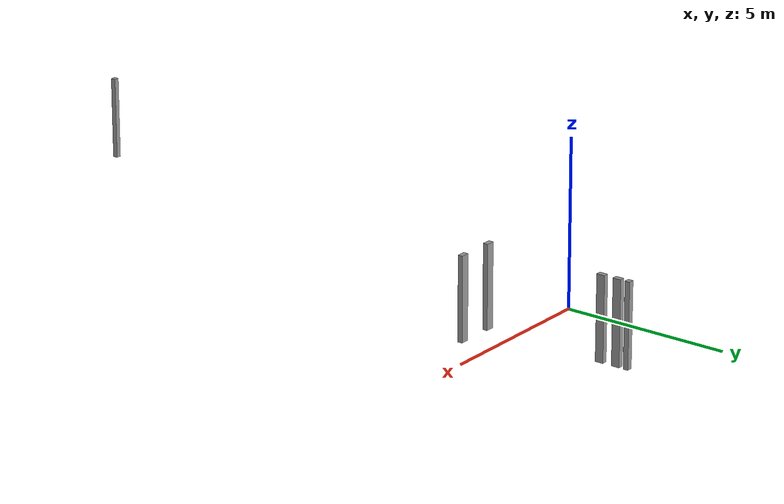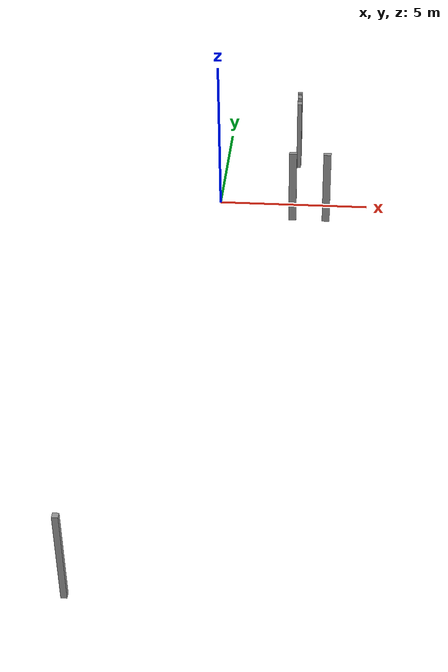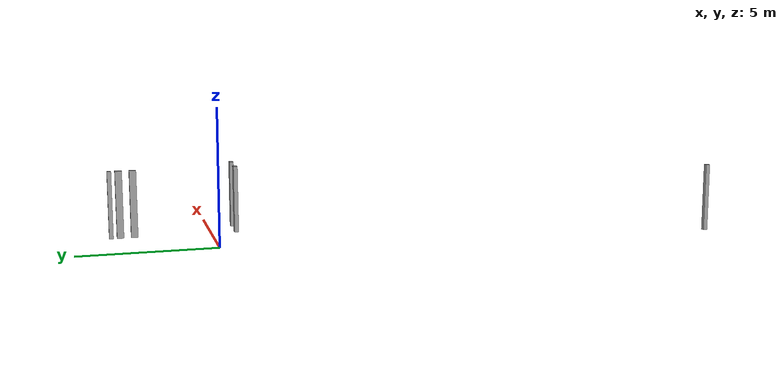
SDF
<?xml version='1.0'?>
<sdf version='1.6'>
  <model name='extra_gaps'>
    <pose frame=''>0.885573 -7.24674 0 0 -0 0</pose>
    <link name='Wall_39'>
      <collision name='Wall_39_Collision'>
        <geometry>
          <box>
            <size>0.15 0.15 2.5</size>
          </box>
        </geometry>
        <pose frame=''>0 0 1.25 0 -0 0</pose>
      </collision>
      <visual name='Wall_39_Visual'>
        <pose frame=''>0 0 1.25 0 -0 0</pose>
        <geometry>
          <box>
            <size>0.15 0.15 2.5</size>
          </box>
        </geometry>
        <material>
          <script>
            <uri>file://media/materials/scripts/gazebo.material</uri>
            <name>Gazebo/Grey</name>
          </script>
          <ambient>1 1 1 1</ambient>
        </material>
        <meta>
          <layer>0</layer>
        </meta>
      </visual>
      <pose frame=''>-2.7906 -10.8978 0 0 -0 0</pose>
    </link>
    <link name='Wall_46'>
      <collision name='Wall_46_Collision'>
        <geometry>
          <box>
            <size>0.16 0.15 2.5</size>
          </box>
        </geometry>
        <pose frame=''>0 0 1.25 0 -0 0</pose>
      </collision>
      <visual name='Wall_46_Visual'>
        <pose frame=''>0 0 1.25 0 -0 0</pose>
        <geometry>
          <box>
            <size>0.16 0.15 2.5</size>
          </box>
        </geometry>
        <material>
          <script>
            <uri>file://media/materials/scripts/gazebo.material</uri>
            <name>Gazebo/Grey</name>
          </script>
          <ambient>1 1 1 1</ambient>
        </material>
        <meta>
          <layer>0</layer>
        </meta>
      </visual>
      <pose frame=''>1.66561 10.8978 0 0 -0 0</pose>
    </link>
    <link name='Wall_48'>
      <collision name='Wall_48_Collision'>
        <geometry>
          <box>
            <size>0.25 0.15 2.5</size>
          </box>
        </geometry>
        <pose frame=''>0 0 1.25 0 -0 0</pose>
      </collision>
      <visual name='Wall_48_Visual'>
        <pose frame=''>0 0 1.25 0 -0 0</pose>
        <geometry>
          <box>
            <size>0.25 0.15 2.5</size>
          </box>
        </geometry>
        <material>
          <script>
            <uri>file://media/materials/scripts/gazebo.material</uri>
            <name>Gazebo/Grey</name>
          </script>
          <ambient>1 1 1 1</ambient>
        </material>
        <meta>
          <layer>0</layer>
        </meta>
      </visual>
      <pose frame=''>1.6706 10.5678 0 0 0 -1.5708</pose>
    </link>
    <link name='Wall_50'>
      <collision name='Wall_50_Collision'>
        <geometry>
          <box>
            <size>0.25 0.15 2.5</size>
          </box>
        </geometry>
        <pose frame=''>0 0 1.25 0 -0 0</pose>
      </collision>
      <visual name='Wall_50_Visual'>
        <pose frame=''>0 0 1.25 0 -0 0</pose>
        <geometry>
          <box>
            <size>0.25 0.15 2.5</size>
          </box>
        </geometry>
        <material>
          <script>
            <uri>file://media/materials/scripts/gazebo.material</uri>
            <name>Gazebo/Grey</name>
          </script>
          <ambient>1 1 1 1</ambient>
        </material>
        <meta>
          <layer>0</layer>
        </meta>
      </visual>
      <pose frame=''>1.6806 10.0578 0 0 0 -1.5708</pose>
    </link>
    <link name='Wall_54'>
      <collision name='Wall_54_Collision'>
        <geometry>
          <box>
            <size>0.25 0.15 2.5</size>
          </box>
        </geometry>
        <pose frame=''>0 0 1.25 0 -0 0</pose>
      </collision>
      <visual name='Wall_54_Visual'>
        <pose frame=''>0 0 1.25 0 -0 0</pose>
        <geometry>
          <box>
            <size>0.25 0.15 2.5</size>
          </box>
        </geometry>
        <material>
          <script>
            <uri>file://media/materials/scripts/gazebo.material</uri>
            <name>Gazebo/Grey</name>
          </script>
          <ambient>1 1 1 1</ambient>
        </material>
        <meta>
          <layer>0</layer>
        </meta>
      </visual>
      <pose frame=''>1.62061 6.30778 0 0 -0 0</pose>
    </link>
    <link name='Wall_56'>
      <collision name='Wall_56_Collision'>
        <geometry>
          <box>
            <size>0.25 0.15 2.5</size>
          </box>
        </geometry>
        <pose frame=''>0 0 1.25 0 -0 0</pose>
      </collision>
      <visual name='Wall_56_Visual'>
        <pose frame=''>0 0 1.25 0 -0 0</pose>
        <geometry>
          <box>
            <size>0.25 0.15 2.5</size>
          </box>
        </geometry>
        <material>
          <script>
            <uri>file://media/materials/scripts/gazebo.material</uri>
            <name>Gazebo/Grey</name>
          </script>
          <ambient>1 1 1 1</ambient>
        </material>
        <meta>
          <layer>0</layer>
        </meta>
      </visual>
      <pose frame=''>2.7406 6.29779 0 0 -0 0</pose>
    </link>
    <static>1</static>
  </model>
</sdf>
